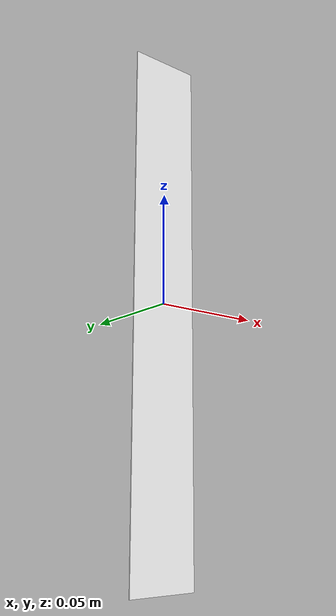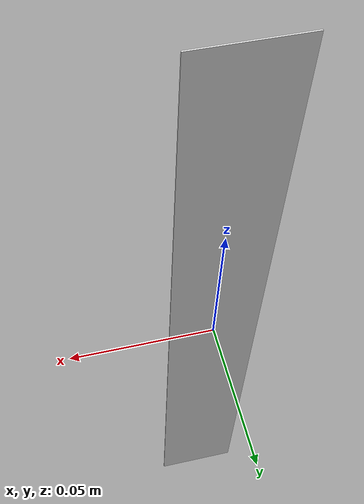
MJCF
<mujoco model="scene_I_edit">
  <compiler angle="degree" meshdir="meshes" texturedir="textures"/>
  <option gravity="0 0 -9.81"/>
  <default>
    <joint armature="0.01" damping="0.5"/>
    <default class="visual">
      <geom contype="0" conaffinity="0" group="2"/>
    </default>
    <default class="collision">
      <geom rgba="0.9 0.9 0.0 0.2" group="3"/>
    </default>
  </default>
  <asset>
    <material name="M_mat0_009" rgba="0.8471 0.8471 0.8471 1.0000"/>
    <mesh name="ImagetostlMesh0008" file="ImagetostlMesh0008.obj" inertia="shell"/>
  </asset>
  <worldbody>
    <body name="imagetostl_mesh_0_008" pos="0.000000 0.000000 0.000000">
      <geom type="mesh" mesh="ImagetostlMesh0008" class="visual" material="M_mat0_009"/>
      <geom name="imagetostl_mesh_0008_aabb" type="box" pos="0.0000 0.0000 0.0000" size="0.0157 0.0050 0.1166" class="collision"/>
    </body>
  </worldbody>
</mujoco>
